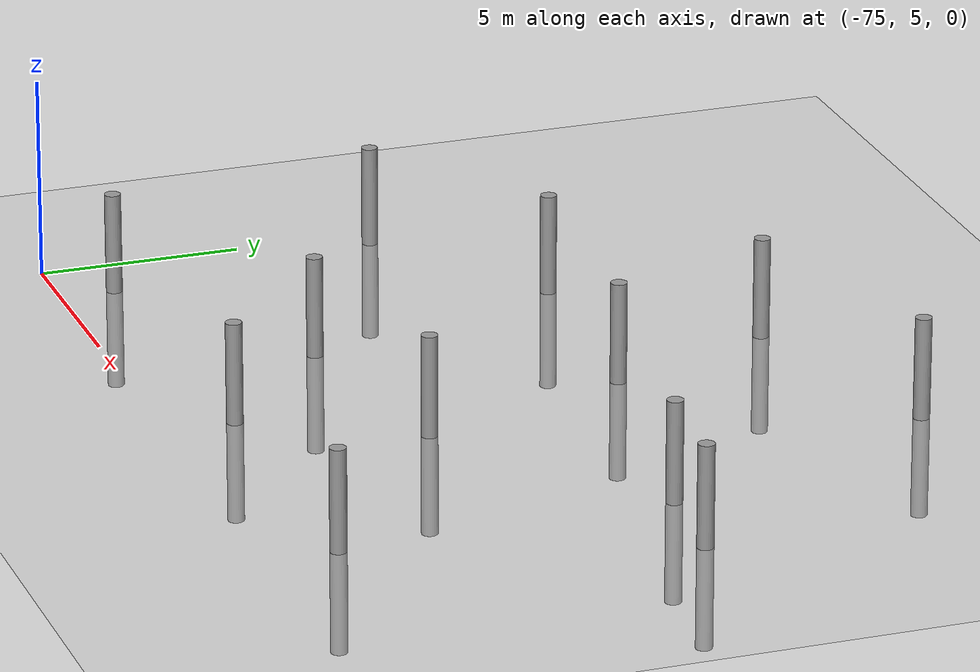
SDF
<sdf version="1.6">
 <world name="default">
  <model name="ground_plane">
   <static>1</static>
   <link name="link">
    <collision name="collision">
     <geometry><plane><normal>0 0 1</normal><size>100 100</size></plane></geometry>
     <surface><friction><ode><mu>100</mu><mu2>50</mu2></ode></friction></surface>
    </collision>
    <visual name="visual">
     <cast_shadows>0</cast_shadows>
     <geometry><plane><normal>0 0 1</normal><size>100 100</size></plane></geometry>
     <material>
      <script><uri>file://media/materials/scripts/gazebo.material</uri><name>Gazebo/Grey</name></script>
     </material>
    </visual>
   </link>
  </model>
  <model name="empty_pillars_6">
   <model name="empty_pillar_clone_0">
    <link name="link">
     <inertial>
      <mass>1</mass>
      <inertia><ixx>0.145833</ixx><ixy>0</ixy><ixz>0</ixz><iyy>0.145833</iyy><iyz>0</iyz><izz>0.125</izz></inertia>
     </inertial>
     <visual name="visual">
      <geometry><cylinder><radius>0.2</radius><length>5</length></cylinder></geometry>
      <material>
       <script><name>Gazebo/Grey</name><uri>file://media/materials/scripts/gazebo.material</uri></script>
       <shader type="vertex"><normal_map>__default__</normal_map></shader>
       <ambient>0.3 0.3 0.3 1</ambient>
       <diffuse>0.7 0.7 0.7 1</diffuse>
       <specular>0.01 0.01 0.01 1</specular>
       <emissive>0 0 0 1</emissive>
      </material>
     </visual>
     <collision name="collision">
      <geometry><cylinder><radius>0.05</radius><length>5</length></cylinder></geometry>
      <surface>
       <friction>
        <ode><mu>1</mu><mu2>1</mu2><fdir1>0 0 0</fdir1><slip1>0</slip1><slip2>0</slip2></ode>
        <torsional>
         <coefficient>1</coefficient>
         <patch_radius>0</patch_radius>
         <surface_radius>0</surface_radius>
         <use_patch_radius>1</use_patch_radius>
         <ode><slip>0</slip></ode>
        </torsional>
       </friction>
       <bounce><restitution_coefficient>0</restitution_coefficient><threshold>1e+06</threshold></bounce>
       <contact>
        <collide_without_contact>0</collide_without_contact>
        <collide_without_contact_bitmask>1</collide_without_contact_bitmask>
        <collide_bitmask>1</collide_bitmask>
        <ode>
         <soft_cfm>0</soft_cfm>
         <soft_erp>0.2</soft_erp>
         <kp>1e+13</kp>
         <kd>1</kd>
         <max_vel>0.01</max_vel>
         <min_depth>0</min_depth>
        </ode>
        <bullet>
         <split_impulse>1</split_impulse>
         <split_impulse_penetration_threshold>-0.01</split_impulse_penetration_threshold>
         <soft_cfm>0</soft_cfm>
         <soft_erp>0.2</soft_erp>
         <kp>1e+13</kp>
         <kd>1</kd>
        </bullet>
       </contact>
      </surface>
     </collision>
    </link>
    <static>0</static>
    <pose>10.3453 -7.35986 0 0 -0 0</pose>
   </model>
   <model name="empty_pillar_clone_10">
    <link name="link">
     <inertial>
      <mass>1</mass>
      <inertia><ixx>0.145833</ixx><ixy>0</ixy><ixz>0</ixz><iyy>0.145833</iyy><iyz>0</iyz><izz>0.125</izz></inertia>
     </inertial>
     <visual name="visual">
      <geometry><cylinder><radius>0.2</radius><length>5</length></cylinder></geometry>
      <material>
       <script><name>Gazebo/Grey</name><uri>file://media/materials/scripts/gazebo.material</uri></script>
       <shader type="vertex"><normal_map>__default__</normal_map></shader>
       <ambient>0.3 0.3 0.3 1</ambient>
       <diffuse>0.7 0.7 0.7 1</diffuse>
       <specular>0.01 0.01 0.01 1</specular>
       <emissive>0 0 0 1</emissive>
      </material>
     </visual>
     <collision name="collision">
      <geometry><cylinder><radius>0.05</radius><length>5</length></cylinder></geometry>
      <surface>
       <friction>
        <ode><mu>1</mu><mu2>1</mu2><fdir1>0 0 0</fdir1><slip1>0</slip1><slip2>0</slip2></ode>
        <torsional>
         <coefficient>1</coefficient>
         <patch_radius>0</patch_radius>
         <surface_radius>0</surface_radius>
         <use_patch_radius>1</use_patch_radius>
         <ode><slip>0</slip></ode>
        </torsional>
       </friction>
       <bounce><restitution_coefficient>0</restitution_coefficient><threshold>1e+06</threshold></bounce>
       <contact>
        <collide_without_contact>0</collide_without_contact>
        <collide_without_contact_bitmask>1</collide_without_contact_bitmask>
        <collide_bitmask>1</collide_bitmask>
        <ode>
         <soft_cfm>0</soft_cfm>
         <soft_erp>0.2</soft_erp>
         <kp>1e+13</kp>
         <kd>1</kd>
         <max_vel>0.01</max_vel>
         <min_depth>0</min_depth>
        </ode>
        <bullet>
         <split_impulse>1</split_impulse>
         <split_impulse_penetration_threshold>-0.01</split_impulse_penetration_threshold>
         <soft_cfm>0</soft_cfm>
         <soft_erp>0.2</soft_erp>
         <kp>1e+13</kp>
         <kd>1</kd>
        </bullet>
       </contact>
      </surface>
     </collision>
    </link>
    <static>0</static>
    <pose>13.5083 -16.8403 0 0 -0 0</pose>
   </model>
   <model name="empty_pillar_clone_11">
    <link name="link">
     <inertial>
      <mass>1</mass>
      <inertia><ixx>0.145833</ixx><ixy>0</ixy><ixz>0</ixz><iyy>0.145833</iyy><iyz>0</iyz><izz>0.125</izz></inertia>
     </inertial>
     <visual name="visual">
      <geometry><cylinder><radius>0.2</radius><length>5</length></cylinder></geometry>
      <material>
       <script><name>Gazebo/Grey</name><uri>file://media/materials/scripts/gazebo.material</uri></script>
       <shader type="vertex"><normal_map>__default__</normal_map></shader>
       <ambient>0.3 0.3 0.3 1</ambient>
       <diffuse>0.7 0.7 0.7 1</diffuse>
       <specular>0.01 0.01 0.01 1</specular>
       <emissive>0 0 0 1</emissive>
      </material>
     </visual>
     <collision name="collision">
      <geometry><cylinder><radius>0.05</radius><length>5</length></cylinder></geometry>
      <surface>
       <friction>
        <ode><mu>1</mu><mu2>1</mu2><fdir1>0 0 0</fdir1><slip1>0</slip1><slip2>0</slip2></ode>
        <torsional>
         <coefficient>1</coefficient>
         <patch_radius>0</patch_radius>
         <surface_radius>0</surface_radius>
         <use_patch_radius>1</use_patch_radius>
         <ode><slip>0</slip></ode>
        </torsional>
       </friction>
       <bounce><restitution_coefficient>0</restitution_coefficient><threshold>1e+06</threshold></bounce>
       <contact>
        <collide_without_contact>0</collide_without_contact>
        <collide_without_contact_bitmask>1</collide_without_contact_bitmask>
        <collide_bitmask>1</collide_bitmask>
        <ode>
         <soft_cfm>0</soft_cfm>
         <soft_erp>0.2</soft_erp>
         <kp>1e+13</kp>
         <kd>1</kd>
         <max_vel>0.01</max_vel>
         <min_depth>0</min_depth>
        </ode>
        <bullet>
         <split_impulse>1</split_impulse>
         <split_impulse_penetration_threshold>-0.01</split_impulse_penetration_threshold>
         <soft_cfm>0</soft_cfm>
         <soft_erp>0.2</soft_erp>
         <kp>1e+13</kp>
         <kd>1</kd>
        </bullet>
       </contact>
      </surface>
     </collision>
    </link>
    <static>0</static>
    <pose>7.98536 -17.8403 0 0 -0 0</pose>
   </model>
   <model name="empty_pillar_clone_3">
    <link name="link">
     <inertial>
      <mass>1</mass>
      <inertia><ixx>0.145833</ixx><ixy>0</ixy><ixz>0</ixz><iyy>0.145833</iyy><iyz>0</iyz><izz>0.125</izz></inertia>
     </inertial>
     <visual name="visual">
      <geometry><cylinder><radius>0.2</radius><length>5</length></cylinder></geometry>
      <material>
       <script><name>Gazebo/Grey</name><uri>file://media/materials/scripts/gazebo.material</uri></script>
       <shader type="vertex"><normal_map>__default__</normal_map></shader>
       <ambient>0.3 0.3 0.3 1</ambient>
       <diffuse>0.7 0.7 0.7 1</diffuse>
       <specular>0.01 0.01 0.01 1</specular>
       <emissive>0 0 0 1</emissive>
      </material>
     </visual>
     <collision name="collision">
      <geometry><cylinder><radius>0.05</radius><length>5</length></cylinder></geometry>
      <surface>
       <friction>
        <ode><mu>1</mu><mu2>1</mu2><fdir1>0 0 0</fdir1><slip1>0</slip1><slip2>0</slip2></ode>
        <torsional>
         <coefficient>1</coefficient>
         <patch_radius>0</patch_radius>
         <surface_radius>0</surface_radius>
         <use_patch_radius>1</use_patch_radius>
         <ode><slip>0</slip></ode>
        </torsional>
       </friction>
       <bounce><restitution_coefficient>0</restitution_coefficient><threshold>1e+06</threshold></bounce>
       <contact>
        <collide_without_contact>0</collide_without_contact>
        <collide_without_contact_bitmask>1</collide_without_contact_bitmask>
        <collide_bitmask>1</collide_bitmask>
        <ode>
         <soft_cfm>0</soft_cfm>
         <soft_erp>0.2</soft_erp>
         <kp>1e+13</kp>
         <kd>1</kd>
         <max_vel>0.01</max_vel>
         <min_depth>0</min_depth>
        </ode>
        <bullet>
         <split_impulse>1</split_impulse>
         <split_impulse_penetration_threshold>-0.01</split_impulse_penetration_threshold>
         <soft_cfm>0</soft_cfm>
         <soft_erp>0.2</soft_erp>
         <kp>1e+13</kp>
         <kd>1</kd>
        </bullet>
       </contact>
      </surface>
     </collision>
    </link>
    <static>0</static>
    <pose>5.99316 -11.2211 0 0 -0 0</pose>
   </model>
   <model name="empty_pillar_clone_33">
    <link name="link">
     <inertial>
      <mass>1</mass>
      <inertia><ixx>0.145833</ixx><ixy>0</ixy><ixz>0</ixz><iyy>0.145833</iyy><iyz>0</iyz><izz>0.125</izz></inertia>
     </inertial>
     <visual name="visual">
      <geometry><cylinder><radius>0.2</radius><length>5</length></cylinder></geometry>
      <material>
       <script><name>Gazebo/Grey</name><uri>file://media/materials/scripts/gazebo.material</uri></script>
       <shader type="vertex"><normal_map>__default__</normal_map></shader>
       <ambient>0.3 0.3 0.3 1</ambient>
       <diffuse>0.7 0.7 0.7 1</diffuse>
       <specular>0.01 0.01 0.01 1</specular>
       <emissive>0 0 0 1</emissive>
      </material>
     </visual>
     <collision name="collision">
      <geometry><cylinder><radius>0.05</radius><length>5</length></cylinder></geometry>
      <surface>
       <friction>
        <ode><mu>1</mu><mu2>1</mu2><fdir1>0 0 0</fdir1><slip1>0</slip1><slip2>0</slip2></ode>
        <torsional>
         <coefficient>1</coefficient>
         <patch_radius>0</patch_radius>
         <surface_radius>0</surface_radius>
         <use_patch_radius>1</use_patch_radius>
         <ode><slip>0</slip></ode>
        </torsional>
       </friction>
       <bounce><restitution_coefficient>0</restitution_coefficient><threshold>1e+06</threshold></bounce>
       <contact>
        <collide_without_contact>0</collide_without_contact>
        <collide_without_contact_bitmask>1</collide_without_contact_bitmask>
        <collide_bitmask>1</collide_bitmask>
        <ode>
         <soft_cfm>0</soft_cfm>
         <soft_erp>0.2</soft_erp>
         <kp>1e+13</kp>
         <kd>1</kd>
         <max_vel>0.01</max_vel>
         <min_depth>0</min_depth>
        </ode>
        <bullet>
         <split_impulse>1</split_impulse>
         <split_impulse_penetration_threshold>-0.01</split_impulse_penetration_threshold>
         <soft_cfm>0</soft_cfm>
         <soft_erp>0.2</soft_erp>
         <kp>1e+13</kp>
         <kd>1</kd>
        </bullet>
       </contact>
      </surface>
     </collision>
    </link>
    <static>0</static>
    <pose>21.5621 -13.0704 0 0 -0 0</pose>
   </model>
   <model name="empty_pillar_clone_34">
    <link name="link">
     <inertial>
      <mass>1</mass>
      <inertia><ixx>0.145833</ixx><ixy>0</ixy><ixz>0</ixz><iyy>0.145833</iyy><iyz>0</iyz><izz>0.125</izz></inertia>
     </inertial>
     <visual name="visual">
      <geometry><cylinder><radius>0.2</radius><length>5</length></cylinder></geometry>
      <material>
       <script><name>Gazebo/Grey</name><uri>file://media/materials/scripts/gazebo.material</uri></script>
       <shader type="vertex"><normal_map>__default__</normal_map></shader>
       <ambient>0.3 0.3 0.3 1</ambient>
       <diffuse>0.7 0.7 0.7 1</diffuse>
       <specular>0.01 0.01 0.01 1</specular>
       <emissive>0 0 0 1</emissive>
      </material>
     </visual>
     <collision name="collision">
      <geometry><cylinder><radius>0.05</radius><length>5</length></cylinder></geometry>
      <surface>
       <friction>
        <ode><mu>1</mu><mu2>1</mu2><fdir1>0 0 0</fdir1><slip1>0</slip1><slip2>0</slip2></ode>
        <torsional>
         <coefficient>1</coefficient>
         <patch_radius>0</patch_radius>
         <surface_radius>0</surface_radius>
         <use_patch_radius>1</use_patch_radius>
         <ode><slip>0</slip></ode>
        </torsional>
       </friction>
       <bounce><restitution_coefficient>0</restitution_coefficient><threshold>1e+06</threshold></bounce>
       <contact>
        <collide_without_contact>0</collide_without_contact>
        <collide_without_contact_bitmask>1</collide_without_contact_bitmask>
        <collide_bitmask>1</collide_bitmask>
        <ode>
         <soft_cfm>0</soft_cfm>
         <soft_erp>0.2</soft_erp>
         <kp>1e+13</kp>
         <kd>1</kd>
         <max_vel>0.01</max_vel>
         <min_depth>0</min_depth>
        </ode>
        <bullet>
         <split_impulse>1</split_impulse>
         <split_impulse_penetration_threshold>-0.01</split_impulse_penetration_threshold>
         <soft_cfm>0</soft_cfm>
         <soft_erp>0.2</soft_erp>
         <kp>1e+13</kp>
         <kd>1</kd>
        </bullet>
       </contact>
      </surface>
     </collision>
    </link>
    <static>0</static>
    <pose>19.0861 -20.8946 0 0 -0 0</pose>
   </model>
   <model name="empty_pillar_clone_4">
    <link name="link">
     <inertial>
      <mass>1</mass>
      <inertia><ixx>0.145833</ixx><ixy>0</ixy><ixz>0</ixz><iyy>0.145833</iyy><iyz>0</iyz><izz>0.125</izz></inertia>
     </inertial>
     <visual name="visual">
      <geometry><cylinder><radius>0.2</radius><length>5</length></cylinder></geometry>
      <material>
       <script><name>Gazebo/Grey</name><uri>file://media/materials/scripts/gazebo.material</uri></script>
       <shader type="vertex"><normal_map>__default__</normal_map></shader>
       <ambient>0.3 0.3 0.3 1</ambient>
       <diffuse>0.7 0.7 0.7 1</diffuse>
       <specular>0.01 0.01 0.01 1</specular>
       <emissive>0 0 0 1</emissive>
      </material>
     </visual>
     <collision name="collision">
      <geometry><cylinder><radius>0.05</radius><length>5</length></cylinder></geometry>
      <surface>
       <friction>
        <ode><mu>1</mu><mu2>1</mu2><fdir1>0 0 0</fdir1><slip1>0</slip1><slip2>0</slip2></ode>
        <torsional>
         <coefficient>1</coefficient>
         <patch_radius>0</patch_radius>
         <surface_radius>0</surface_radius>
         <use_patch_radius>1</use_patch_radius>
         <ode><slip>0</slip></ode>
        </torsional>
       </friction>
       <bounce><restitution_coefficient>0</restitution_coefficient><threshold>1e+06</threshold></bounce>
       <contact>
        <collide_without_contact>0</collide_without_contact>
        <collide_without_contact_bitmask>1</collide_without_contact_bitmask>
        <collide_bitmask>1</collide_bitmask>
        <ode>
         <soft_cfm>0</soft_cfm>
         <soft_erp>0.2</soft_erp>
         <kp>1e+13</kp>
         <kd>1</kd>
         <max_vel>0.01</max_vel>
         <min_depth>0</min_depth>
        </ode>
        <bullet>
         <split_impulse>1</split_impulse>
         <split_impulse_penetration_threshold>-0.01</split_impulse_penetration_threshold>
         <soft_cfm>0</soft_cfm>
         <soft_erp>0.2</soft_erp>
         <kp>1e+13</kp>
         <kd>1</kd>
        </bullet>
       </contact>
      </surface>
     </collision>
    </link>
    <static>0</static>
    <pose>1.48428 -14.2998 0 0 -0 0</pose>
   </model>
   <model name="empty_pillar_clone_46">
    <link name="link">
     <inertial>
      <mass>1</mass>
      <inertia><ixx>0.145833</ixx><ixy>0</ixy><ixz>0</ixz><iyy>0.145833</iyy><iyz>0</iyz><izz>0.125</izz></inertia>
     </inertial>
     <visual name="visual">
      <geometry><cylinder><radius>0.2</radius><length>5</length></cylinder></geometry>
      <material>
       <script><name>Gazebo/Grey</name><uri>file://media/materials/scripts/gazebo.material</uri></script>
       <shader type="vertex"><normal_map>__default__</normal_map></shader>
       <ambient>0.3 0.3 0.3 1</ambient>
       <diffuse>0.7 0.7 0.7 1</diffuse>
       <specular>0.01 0.01 0.01 1</specular>
       <emissive>0 0 0 1</emissive>
      </material>
     </visual>
     <collision name="collision">
      <geometry><cylinder><radius>0.05</radius><length>5</length></cylinder></geometry>
      <surface>
       <friction>
        <ode><mu>1</mu><mu2>1</mu2><fdir1>0 0 0</fdir1><slip1>0</slip1><slip2>0</slip2></ode>
        <torsional>
         <coefficient>1</coefficient>
         <patch_radius>0</patch_radius>
         <surface_radius>0</surface_radius>
         <use_patch_radius>1</use_patch_radius>
         <ode><slip>0</slip></ode>
        </torsional>
       </friction>
       <bounce><restitution_coefficient>0</restitution_coefficient><threshold>1e+06</threshold></bounce>
       <contact>
        <collide_without_contact>0</collide_without_contact>
        <collide_without_contact_bitmask>1</collide_without_contact_bitmask>
        <collide_bitmask>1</collide_bitmask>
        <ode>
         <soft_cfm>0</soft_cfm>
         <soft_erp>0.2</soft_erp>
         <kp>1e+13</kp>
         <kd>1</kd>
         <max_vel>0.01</max_vel>
         <min_depth>0</min_depth>
        </ode>
        <bullet>
         <split_impulse>1</split_impulse>
         <split_impulse_penetration_threshold>-0.01</split_impulse_penetration_threshold>
         <soft_cfm>0</soft_cfm>
         <soft_erp>0.2</soft_erp>
         <kp>1e+13</kp>
         <kd>1</kd>
        </bullet>
       </contact>
      </surface>
     </collision>
    </link>
    <static>0</static>
    <pose>2.45033 -21.185 0 0 -0 0</pose>
   </model>
   <model name="empty_pillar_clone_48">
    <link name="link">
     <inertial>
      <mass>1</mass>
      <inertia><ixx>0.145833</ixx><ixy>0</ixy><ixz>0</ixz><iyy>0.145833</iyy><iyz>0</iyz><izz>0.125</izz></inertia>
     </inertial>
     <visual name="visual">
      <geometry><cylinder><radius>0.2</radius><length>5</length></cylinder></geometry>
      <material>
       <script><name>Gazebo/Grey</name><uri>file://media/materials/scripts/gazebo.material</uri></script>
       <shader type="vertex"><normal_map>__default__</normal_map></shader>
       <ambient>0.3 0.3 0.3 1</ambient>
       <diffuse>0.7 0.7 0.7 1</diffuse>
       <specular>0.01 0.01 0.01 1</specular>
       <emissive>0 0 0 1</emissive>
      </material>
     </visual>
     <collision name="collision">
      <geometry><cylinder><radius>0.05</radius><length>5</length></cylinder></geometry>
      <surface>
       <friction>
        <ode><mu>1</mu><mu2>1</mu2><fdir1>0 0 0</fdir1><slip1>0</slip1><slip2>0</slip2></ode>
        <torsional>
         <coefficient>1</coefficient>
         <patch_radius>0</patch_radius>
         <surface_radius>0</surface_radius>
         <use_patch_radius>1</use_patch_radius>
         <ode><slip>0</slip></ode>
        </torsional>
       </friction>
       <bounce><restitution_coefficient>0</restitution_coefficient><threshold>1e+06</threshold></bounce>
       <contact>
        <collide_without_contact>0</collide_without_contact>
        <collide_without_contact_bitmask>1</collide_without_contact_bitmask>
        <collide_bitmask>1</collide_bitmask>
        <ode>
         <soft_cfm>0</soft_cfm>
         <soft_erp>0.2</soft_erp>
         <kp>1e+13</kp>
         <kd>1</kd>
         <max_vel>0.01</max_vel>
         <min_depth>0</min_depth>
        </ode>
        <bullet>
         <split_impulse>1</split_impulse>
         <split_impulse_penetration_threshold>-0.01</split_impulse_penetration_threshold>
         <soft_cfm>0</soft_cfm>
         <soft_erp>0.2</soft_erp>
         <kp>1e+13</kp>
         <kd>1</kd>
        </bullet>
       </contact>
      </surface>
     </collision>
    </link>
    <static>0</static>
    <pose>16.2633 -5.65052 0 0 -0 0</pose>
   </model>
   <model name="empty_pillar_clone_51">
    <link name="link">
     <inertial>
      <mass>1</mass>
      <inertia><ixx>0.145833</ixx><ixy>0</ixy><ixz>0</ixz><iyy>0.145833</iyy><iyz>0</iyz><izz>0.125</izz></inertia>
     </inertial>
     <visual name="visual">
      <geometry><cylinder><radius>0.2</radius><length>5</length></cylinder></geometry>
      <material>
       <script><name>Gazebo/Grey</name><uri>file://media/materials/scripts/gazebo.material</uri></script>
       <shader type="vertex"><normal_map>__default__</normal_map></shader>
       <ambient>0.3 0.3 0.3 1</ambient>
       <diffuse>0.7 0.7 0.7 1</diffuse>
       <specular>0.01 0.01 0.01 1</specular>
       <emissive>0 0 0 1</emissive>
      </material>
     </visual>
     <collision name="collision">
      <geometry><cylinder><radius>0.05</radius><length>5</length></cylinder></geometry>
      <surface>
       <friction>
        <ode><mu>1</mu><mu2>1</mu2><fdir1>0 0 0</fdir1><slip1>0</slip1><slip2>0</slip2></ode>
        <torsional>
         <coefficient>1</coefficient>
         <patch_radius>0</patch_radius>
         <surface_radius>0</surface_radius>
         <use_patch_radius>1</use_patch_radius>
         <ode><slip>0</slip></ode>
        </torsional>
       </friction>
       <bounce><restitution_coefficient>0</restitution_coefficient><threshold>1e+06</threshold></bounce>
       <contact>
        <collide_without_contact>0</collide_without_contact>
        <collide_without_contact_bitmask>1</collide_without_contact_bitmask>
        <collide_bitmask>1</collide_bitmask>
        <ode>
         <soft_cfm>0</soft_cfm>
         <soft_erp>0.2</soft_erp>
         <kp>1e+13</kp>
         <kd>1</kd>
         <max_vel>0.01</max_vel>
         <min_depth>0</min_depth>
        </ode>
        <bullet>
         <split_impulse>1</split_impulse>
         <split_impulse_penetration_threshold>-0.01</split_impulse_penetration_threshold>
         <soft_cfm>0</soft_cfm>
         <soft_erp>0.2</soft_erp>
         <kp>1e+13</kp>
         <kd>1</kd>
        </bullet>
       </contact>
      </surface>
     </collision>
    </link>
    <static>0</static>
    <pose>11.8943 -11.5792 0 0 -0 0</pose>
   </model>
   <model name="empty_pillar_clone_52">
    <link name="link">
     <inertial>
      <mass>1</mass>
      <inertia><ixx>0.145833</ixx><ixy>0</ixy><ixz>0</ixz><iyy>0.145833</iyy><iyz>0</iyz><izz>0.125</izz></inertia>
     </inertial>
     <visual name="visual">
      <geometry><cylinder><radius>0.2</radius><length>5</length></cylinder></geometry>
      <material>
       <script><name>Gazebo/Grey</name><uri>file://media/materials/scripts/gazebo.material</uri></script>
       <shader type="vertex"><normal_map>__default__</normal_map></shader>
       <ambient>0.3 0.3 0.3 1</ambient>
       <diffuse>0.7 0.7 0.7 1</diffuse>
       <specular>0.01 0.01 0.01 1</specular>
       <emissive>0 0 0 1</emissive>
      </material>
     </visual>
     <collision name="collision">
      <geometry><cylinder><radius>0.05</radius><length>5</length></cylinder></geometry>
      <surface>
       <friction>
        <ode><mu>1</mu><mu2>1</mu2><fdir1>0 0 0</fdir1><slip1>0</slip1><slip2>0</slip2></ode>
        <torsional>
         <coefficient>1</coefficient>
         <patch_radius>0</patch_radius>
         <surface_radius>0</surface_radius>
         <use_patch_radius>1</use_patch_radius>
         <ode><slip>0</slip></ode>
        </torsional>
       </friction>
       <bounce><restitution_coefficient>0</restitution_coefficient><threshold>1e+06</threshold></bounce>
       <contact>
        <collide_without_contact>0</collide_without_contact>
        <collide_without_contact_bitmask>1</collide_without_contact_bitmask>
        <collide_bitmask>1</collide_bitmask>
        <ode>
         <soft_cfm>0</soft_cfm>
         <soft_erp>0.2</soft_erp>
         <kp>1e+13</kp>
         <kd>1</kd>
         <max_vel>0.01</max_vel>
         <min_depth>0</min_depth>
        </ode>
        <bullet>
         <split_impulse>1</split_impulse>
         <split_impulse_penetration_threshold>-0.01</split_impulse_penetration_threshold>
         <soft_cfm>0</soft_cfm>
         <soft_erp>0.2</soft_erp>
         <kp>1e+13</kp>
         <kd>1</kd>
        </bullet>
       </contact>
      </surface>
     </collision>
    </link>
    <static>0</static>
    <pose>11.2833 -20.8743 0 0 -0 0</pose>
   </model>
   <model name="empty_pillar_clone_8">
    <link name="link">
     <inertial>
      <mass>1</mass>
      <inertia><ixx>0.145833</ixx><ixy>0</ixy><ixz>0</ixz><iyy>0.145833</iyy><iyz>0</iyz><izz>0.125</izz></inertia>
     </inertial>
     <visual name="visual">
      <geometry><cylinder><radius>0.2</radius><length>5</length></cylinder></geometry>
      <material>
       <script><name>Gazebo/Grey</name><uri>file://media/materials/scripts/gazebo.material</uri></script>
       <shader type="vertex"><normal_map>__default__</normal_map></shader>
       <ambient>0.3 0.3 0.3 1</ambient>
       <diffuse>0.7 0.7 0.7 1</diffuse>
       <specular>0.01 0.01 0.01 1</specular>
       <emissive>0 0 0 1</emissive>
      </material>
     </visual>
     <collision name="collision">
      <geometry><cylinder><radius>0.05</radius><length>5</length></cylinder></geometry>
      <surface>
       <friction>
        <ode><mu>1</mu><mu2>1</mu2><fdir1>0 0 0</fdir1><slip1>0</slip1><slip2>0</slip2></ode>
        <torsional>
         <coefficient>1</coefficient>
         <patch_radius>0</patch_radius>
         <surface_radius>0</surface_radius>
         <use_patch_radius>1</use_patch_radius>
         <ode><slip>0</slip></ode>
        </torsional>
       </friction>
       <bounce><restitution_coefficient>0</restitution_coefficient><threshold>1e+06</threshold></bounce>
       <contact>
        <collide_without_contact>0</collide_without_contact>
        <collide_without_contact_bitmask>1</collide_without_contact_bitmask>
        <collide_bitmask>1</collide_bitmask>
        <ode>
         <soft_cfm>0</soft_cfm>
         <soft_erp>0.2</soft_erp>
         <kp>1e+13</kp>
         <kd>1</kd>
         <max_vel>0.01</max_vel>
         <min_depth>0</min_depth>
        </ode>
        <bullet>
         <split_impulse>1</split_impulse>
         <split_impulse_penetration_threshold>-0.01</split_impulse_penetration_threshold>
         <soft_cfm>0</soft_cfm>
         <soft_erp>0.2</soft_erp>
         <kp>1e+13</kp>
         <kd>1</kd>
        </bullet>
       </contact>
      </surface>
     </collision>
    </link>
    <static>0</static>
    <pose>18.9854 -12.8403 0 0 -0 0</pose>
   </model>
   <static>0</static>
   <pose>-75.8833 27.5686 0 0 -0 0</pose>
  </model>
 </world>
</sdf>
